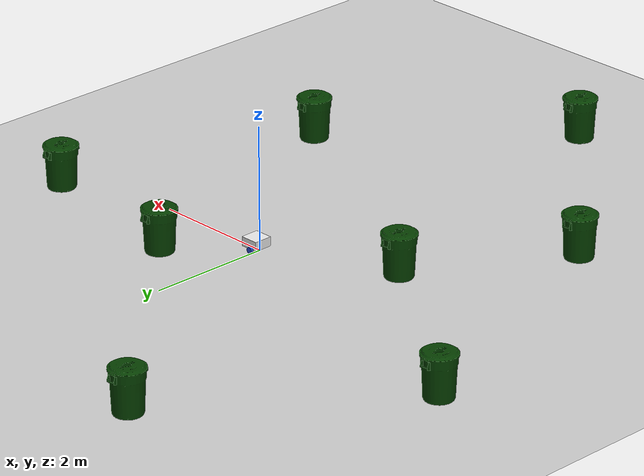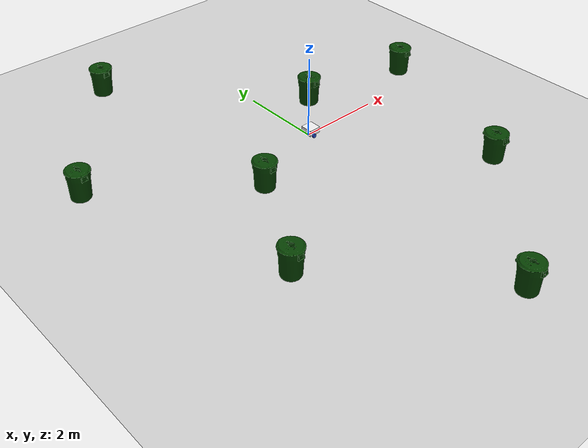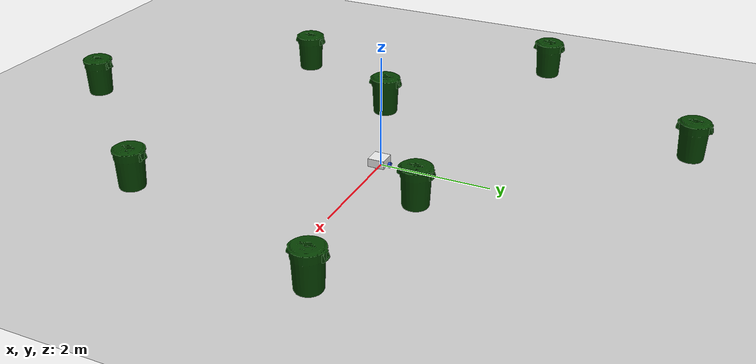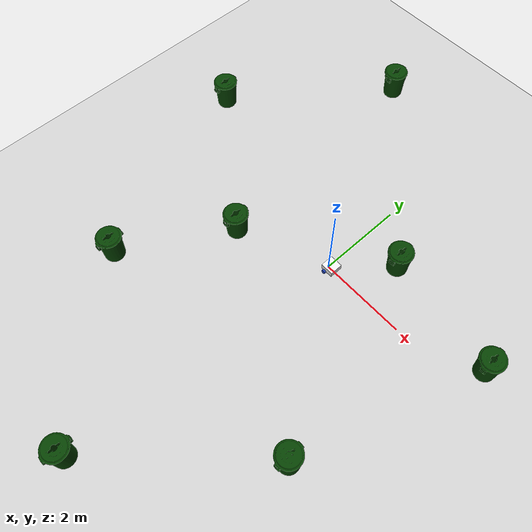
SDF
<sdf version="1.7">
 <world name="default">
  <light name="sun" type="directional">
   <pose>0 0 10 0 -0 0</pose>
   <diffuse>0.8 0.8 0.8 1</diffuse>
   <specular>0.2 0.2 0.2 1</specular>
   <attenuation>
    <range>1000</range>
    <constant>0.9</constant>
    <linear>0.01</linear>
    <quadratic>0.001</quadratic>
   </attenuation>
   <direction>-0.5 0.1 -0.9</direction>
   <spot><inner_angle>0</inner_angle><outer_angle>0</outer_angle><falloff>0</falloff></spot>
  </light>
  <model name="ground_plane">
   <static>1</static>
   <link name="link">
    <collision name="collision">
     <geometry><plane><normal>0 0 1</normal><size>100 100</size></plane></geometry>
     <surface>
      <contact><collide_bitmask>65535</collide_bitmask></contact>
      <friction><ode><mu>100</mu><mu2>50</mu2></ode></friction>
     </surface>
    </collision>
    <visual name="visual">
     <cast_shadows>0</cast_shadows>
     <geometry><plane><normal>0 0 1</normal><size>100 100</size></plane></geometry>
     <material>
      <script><uri>file://media/materials/scripts/gazebo.material</uri><name>Gazebo/Grey</name></script>
     </material>
    </visual>
   </link>
  </model>
  <gravity>0 0 -9.8</gravity>
  <magnetic_field>6e-06 2.3e-05 -4.2e-05</magnetic_field>
  <atmosphere type="adiabatic"/>
  <physics type="ode">
   <max_step_size>0.001</max_step_size>
   <real_time_factor>1</real_time_factor>
   <real_time_update_rate>1000</real_time_update_rate>
  </physics>
  <scene><ambient>0.4 0.4 0.4 1</ambient><background>0.7 0.7 0.7 1</background><shadows>1</shadows></scene>
  <spherical_coordinates>
   <surface_model>EARTH_WGS84</surface_model>
   <latitude_deg>0</latitude_deg>
   <longitude_deg>0</longitude_deg>
   <elevation>0</elevation>
   <heading_deg>0</heading_deg>
  </spherical_coordinates>
  <model name="my_bot">
   <link name="base_link">
    <inertial>
     <pose>0.05 0 0.075 0 -0 0</pose>
     <mass>0.5</mass>
     <inertia>
      <ixx>0.0046875</ixx>
      <ixy>0</ixy>
      <ixz>0</ixz>
      <iyy>0.0046875</iyy>
      <iyz>0</iyz>
      <izz>0.0075</izz>
     </inertia>
    </inertial>
    <collision name="base_link_fixed_joint_lump__chassis_collision">
     <pose>0.05 0 0.075 0 -0 0</pose>
     <geometry><box><size>0.3 0.3 0.15</size></box></geometry>
    </collision>
    <collision name="base_link_fixed_joint_lump__castor_wheel_collision_1">
     <pose>0.14 0 0 0 -0 0</pose>
     <geometry><sphere><radius>0.05</radius></sphere></geometry>
     <surface><friction><ode><mu>0.001</mu><mu2>0.001</mu2></ode></friction></surface>
    </collision>
    <visual name="base_link_fixed_joint_lump__chassis_visual">
     <pose>0.05 0 0.075 0 -0 0</pose>
     <geometry><box><size>0.3 0.3 0.15</size></box></geometry>
     <material>
      <script><name>Gazebo/White</name><uri>file://media/materials/scripts/gazebo.material</uri></script>
     </material>
    </visual>
    <visual name="base_link_fixed_joint_lump__castor_wheel_visual_1">
     <pose>0.14 0 0 0 -0 0</pose>
     <geometry><sphere><radius>0.05</radius></sphere></geometry>
     <material>
      <script><name>Gazebo/Black</name><uri>file://media/materials/scripts/gazebo.material</uri></script>
     </material>
    </visual>
   </link>
   <joint name="left_wheel_joint" type="revolute">
    <pose relative_to="base_link">0 0.175 0 -1.5708 0 0</pose>
    <parent>base_link</parent>
    <child>left_wheel</child>
    <axis>
     <xyz>0 0 1</xyz>
     <limit><lower>-1e+16</lower><upper>1e+16</upper></limit>
     <dynamics><spring_reference>0</spring_reference><spring_stiffness>0</spring_stiffness></dynamics>
    </axis>
   </joint>
   <link name="left_wheel">
    <pose relative_to="left_wheel_joint">0 0 0 0 -0 0</pose>
    <inertial>
     <mass>0.1</mass>
     <inertia>
      <ixx>7.58333e-05</ixx>
      <ixy>0</ixy>
      <ixz>0</ixz>
      <iyy>7.58333e-05</iyy>
      <iyz>0</iyz>
      <izz>0.000125</izz>
     </inertia>
    </inertial>
    <collision name="left_wheel_collision">
     <geometry><cylinder><length>0.04</length><radius>0.05</radius></cylinder></geometry>
    </collision>
    <visual name="left_wheel_visual">
     <geometry><cylinder><length>0.04</length><radius>0.05</radius></cylinder></geometry>
     <material>
      <script><name>Gazebo/Blue</name><uri>file://media/materials/scripts/gazebo.material</uri></script>
     </material>
    </visual>
   </link>
   <joint name="right_wheel_joint" type="revolute">
    <pose relative_to="base_link">0 -0.175 0 1.5708 -0 0</pose>
    <parent>base_link</parent>
    <child>right_wheel</child>
    <axis>
     <xyz>0 0 -1</xyz>
     <limit><lower>-1e+16</lower><upper>1e+16</upper></limit>
     <dynamics><spring_reference>0</spring_reference><spring_stiffness>0</spring_stiffness></dynamics>
    </axis>
   </joint>
   <link name="right_wheel">
    <pose relative_to="right_wheel_joint">0 0 0 0 -0 0</pose>
    <inertial>
     <mass>0.1</mass>
     <inertia>
      <ixx>7.58333e-05</ixx>
      <ixy>0</ixy>
      <ixz>0</ixz>
      <iyy>7.58333e-05</iyy>
      <iyz>0</iyz>
      <izz>0.000125</izz>
     </inertia>
    </inertial>
    <collision name="right_wheel_collision">
     <geometry><cylinder><length>0.04</length><radius>0.05</radius></cylinder></geometry>
    </collision>
    <visual name="right_wheel_visual">
     <geometry><cylinder><length>0.04</length><radius>0.05</radius></cylinder></geometry>
     <material>
      <script><name>Gazebo/Blue</name><uri>file://media/materials/scripts/gazebo.material</uri></script>
     </material>
    </visual>
   </link>
   <static>0</static>
   <plugin name="diff_drive" filename="libgazebo_ros_diff_drive.so">
    <left_joint>left_wheel_joint</left_joint>
    <right_joint>right_wheel_joint</right_joint>
    <wheel_separation>0.35</wheel_separation>
    <wheel_diameter>0.1</wheel_diameter>
    <max_wheel_torque>200</max_wheel_torque>
    <max_wheel_acceleration>10.0</max_wheel_acceleration>
    <odometry_frame>odom</odometry_frame>
    <robot_base_frame>base_link</robot_base_frame>
    <publish_odom>1</publish_odom>
    <publish_odom_tf>1</publish_odom_tf>
    <publish_wheel_tf>1</publish_wheel_tf>
   </plugin>
   <pose>0.022333 6.1e-05 0.05 0 1.1e-05 -0.000253</pose>
  </model>
  <light name="user_point_light_0" type="point">
   <pose>-3.23291 2.02668 1 0 -0 0</pose>
   <diffuse>0.5 0.5 0.5 1</diffuse>
   <specular>0.1 0.1 0.1 1</specular>
   <attenuation>
    <range>20</range>
    <constant>0.5</constant>
    <linear>0.01</linear>
    <quadratic>0.001</quadratic>
   </attenuation>
   <cast_shadows>0</cast_shadows>
   <direction>0 0 -1</direction>
  </light>
  <light name="user_point_light_1" type="point">
   <pose>2.89249 1.9305 1 0 -0 0</pose>
   <diffuse>0.5 0.5 0.5 1</diffuse>
   <specular>0.1 0.1 0.1 1</specular>
   <attenuation>
    <range>20</range>
    <constant>0.5</constant>
    <linear>0.01</linear>
    <quadratic>0.001</quadratic>
   </attenuation>
   <cast_shadows>0</cast_shadows>
   <direction>0 0 -1</direction>
  </light>
  <light name="user_point_light_2" type="point">
   <pose>-4.06855 -3.90344 1 0 -0 0</pose>
   <diffuse>0.5 0.5 0.5 1</diffuse>
   <specular>0.1 0.1 0.1 1</specular>
   <attenuation>
    <range>20</range>
    <constant>0.5</constant>
    <linear>0.01</linear>
    <quadratic>0.001</quadratic>
   </attenuation>
   <cast_shadows>0</cast_shadows>
   <direction>0 0 -1</direction>
  </light>
  <light name="user_point_light_3" type="point">
   <pose>4.07263 -3.97423 1 0 -0 0</pose>
   <diffuse>0.5 0.5 0.5 1</diffuse>
   <specular>0.1 0.1 0.1 1</specular>
   <attenuation>
    <range>20</range>
    <constant>0.5</constant>
    <linear>0.01</linear>
    <quadratic>0.001</quadratic>
   </attenuation>
   <cast_shadows>0</cast_shadows>
   <direction>0 0 -1</direction>
  </light>
  <light name="user_point_light_4" type="point">
   <pose>-6.18281 -0.573226 1 0 -0 0</pose>
   <diffuse>0.5 0.5 0.5 1</diffuse>
   <specular>0.1 0.1 0.1 1</specular>
   <attenuation>
    <range>20</range>
    <constant>0.5</constant>
    <linear>0.01</linear>
    <quadratic>0.001</quadratic>
   </attenuation>
   <cast_shadows>0</cast_shadows>
   <direction>0 0 -1</direction>
  </light>
  <light name="user_point_light_5" type="point">
   <pose>6.22814 -0.608831 1 0 -0 0</pose>
   <diffuse>0.5 0.5 0.5 1</diffuse>
   <specular>0.1 0.1 0.1 1</specular>
   <attenuation>
    <range>20</range>
    <constant>0.5</constant>
    <linear>0.01</linear>
    <quadratic>0.001</quadratic>
   </attenuation>
   <cast_shadows>0</cast_shadows>
   <direction>0 0 -1</direction>
  </light>
  <light name="user_point_light_6" type="point">
   <pose>-0.11209 -6.69354 1 0 -0 0</pose>
   <diffuse>0.5 0.5 0.5 1</diffuse>
   <specular>0.1 0.1 0.1 1</specular>
   <attenuation>
    <range>20</range>
    <constant>0.5</constant>
    <linear>0.01</linear>
    <quadratic>0.001</quadratic>
   </attenuation>
   <cast_shadows>0</cast_shadows>
   <direction>0 0 -1</direction>
  </light>
  <light name="user_point_light_7" type="point">
   <pose>0.004202 4.30702 1 0 -0 0</pose>
   <diffuse>0.5 0.5 0.5 1</diffuse>
   <specular>0.1 0.1 0.1 1</specular>
   <attenuation>
    <range>20</range>
    <constant>0.5</constant>
    <linear>0.01</linear>
    <quadratic>0.001</quadratic>
   </attenuation>
   <cast_shadows>0</cast_shadows>
   <direction>0 0 -1</direction>
  </light>
  <light name="user_point_light_8" type="point">
   <pose>0.026066 0.08159 1 0 -0 0</pose>
   <diffuse>0.5 0.5 0.5 1</diffuse>
   <specular>0.1 0.1 0.1 1</specular>
   <attenuation>
    <range>20</range>
    <constant>0.5</constant>
    <linear>0.01</linear>
    <quadratic>0.001</quadratic>
   </attenuation>
   <cast_shadows>0</cast_shadows>
   <direction>0 0 -1</direction>
  </light>
  <model name="first_2015_trash_can">
   <link name="link">
    <inertial>
     <pose>0 0 0.3683 0 -0 0</pose>
     <mass>4.83076</mass>
     <inertia>
      <ixx>0.281534</ixx>
      <ixy>0</ixy>
      <ixz>0</ixz>
      <iyy>0.281534</iyy>
      <iyz>0</iyz>
      <izz>0.126223</izz>
     </inertia>
    </inertial>
    <visual name="visual">
     <geometry><mesh><uri>model://first_2015_trash_can/meshes/trash_can.dae</uri></mesh></geometry>
    </visual>
    <collision name="collision">
     <geometry><mesh><uri>model://first_2015_trash_can/meshes/trash_can.dae</uri></mesh></geometry>
    </collision>
   </link>
   <pose>-2.0627 -0.864868 -1e-06 1.2e-05 1e-06 -0.000584</pose>
  </model>
  <model name="first_2015_trash_can_0">
   <link name="link">
    <inertial>
     <pose>0 0 0.3683 0 -0 0</pose>
     <mass>4.83076</mass>
     <inertia>
      <ixx>0.281534</ixx>
      <ixy>0</ixy>
      <ixz>0</ixz>
      <iyy>0.281534</iyy>
      <iyz>0</iyz>
      <izz>0.126223</izz>
     </inertia>
    </inertial>
    <visual name="visual">
     <geometry><mesh><uri>model://first_2015_trash_can/meshes/trash_can.dae</uri></mesh></geometry>
    </visual>
    <collision name="collision">
     <geometry><mesh><uri>model://first_2015_trash_can/meshes/trash_can.dae</uri></mesh></geometry>
    </collision>
   </link>
   <pose>2.43943 -3.45339 -2e-06 1.6e-05 5e-06 -0.000465</pose>
  </model>
  <model name="first_2015_trash_can_1">
   <link name="link">
    <inertial>
     <pose>0 0 0.3683 0 -0 0</pose>
     <mass>4.83076</mass>
     <inertia>
      <ixx>0.281534</ixx>
      <ixy>0</ixy>
      <ixz>0</ixz>
      <iyy>0.281534</iyy>
      <iyz>0</iyz>
      <izz>0.126223</izz>
     </inertia>
    </inertial>
    <visual name="visual">
     <geometry><mesh><uri>model://first_2015_trash_can/meshes/trash_can.dae</uri></mesh></geometry>
    </visual>
    <collision name="collision">
     <geometry><mesh><uri>model://first_2015_trash_can/meshes/trash_can.dae</uri></mesh></geometry>
    </collision>
   </link>
   <pose>3.78524 0.6314 -7e-06 -3.3e-05 9e-06 -0.000453</pose>
  </model>
  <model name="first_2015_trash_can_2">
   <link name="link">
    <inertial>
     <pose>0 0 0.3683 0 -0 0</pose>
     <mass>4.83076</mass>
     <inertia>
      <ixx>0.281534</ixx>
      <ixy>0</ixy>
      <ixz>0</ixz>
      <iyy>0.281534</iyy>
      <iyz>0</iyz>
      <izz>0.126223</izz>
     </inertia>
    </inertial>
    <visual name="visual">
     <geometry><mesh><uri>model://first_2015_trash_can/meshes/trash_can.dae</uri></mesh></geometry>
    </visual>
    <collision name="collision">
     <geometry><mesh><uri>model://first_2015_trash_can/meshes/trash_can.dae</uri></mesh></geometry>
    </collision>
   </link>
   <pose>-3.44463 -3.24302 -2e-06 -1.3e-05 1e-05 -0.000361</pose>
  </model>
  <model name="first_2015_trash_can_3">
   <link name="link">
    <inertial>
     <pose>0 0 0.3683 0 -0 0</pose>
     <mass>4.83076</mass>
     <inertia>
      <ixx>0.281534</ixx>
      <ixy>0</ixy>
      <ixz>0</ixz>
      <iyy>0.281534</iyy>
      <iyz>0</iyz>
      <izz>0.126223</izz>
     </inertia>
    </inertial>
    <visual name="visual">
     <geometry><mesh><uri>model://first_2015_trash_can/meshes/trash_can.dae</uri></mesh></geometry>
    </visual>
    <collision name="collision">
     <geometry><mesh><uri>model://first_2015_trash_can/meshes/trash_can.dae</uri></mesh></geometry>
    </collision>
   </link>
   <pose>-2.54838 4.82888 -4e-06 -6e-06 4e-06 -0.000418</pose>
  </model>
  <model name="first_2015_trash_can_4">
   <link name="link">
    <inertial>
     <pose>0 0 0.3683 0 -0 0</pose>
     <mass>4.83076</mass>
     <inertia>
      <ixx>0.281534</ixx>
      <ixy>0</ixy>
      <ixz>0</ixz>
      <iyy>0.281534</iyy>
      <iyz>0</iyz>
      <izz>0.126223</izz>
     </inertia>
    </inertial>
    <visual name="visual">
     <geometry><mesh><uri>model://first_2015_trash_can/meshes/trash_can.dae</uri></mesh></geometry>
    </visual>
    <collision name="collision">
     <geometry><mesh><uri>model://first_2015_trash_can/meshes/trash_can.dae</uri></mesh></geometry>
    </collision>
   </link>
   <pose>1.01526 1.08214 -3e-06 4e-06 9e-06 -0.00035</pose>
  </model>
  <model name="first_2015_trash_can_5">
   <link name="link">
    <inertial>
     <pose>0 0 0.3683 0 -0 0</pose>
     <mass>4.83076</mass>
     <inertia>
      <ixx>0.281534</ixx>
      <ixy>0</ixy>
      <ixz>0</ixz>
      <iyy>0.281534</iyy>
      <iyz>0</iyz>
      <izz>0.126223</izz>
     </inertia>
    </inertial>
    <visual name="visual">
     <geometry><mesh><uri>model://first_2015_trash_can/meshes/trash_can.dae</uri></mesh></geometry>
    </visual>
    <collision name="collision">
     <geometry><mesh><uri>model://first_2015_trash_can/meshes/trash_can.dae</uri></mesh></geometry>
    </collision>
   </link>
   <pose>-5.17939 1.45948 1e-06 -2.6e-05 0 -0.00012</pose>
  </model>
  <model name="first_2015_trash_can_6">
   <link name="link">
    <inertial>
     <pose>0 0 0.3683 0 -0 0</pose>
     <mass>4.83076</mass>
     <inertia>
      <ixx>0.281534</ixx>
      <ixy>0</ixy>
      <ixz>0</ixz>
      <iyy>0.281534</iyy>
      <iyz>0</iyz>
      <izz>0.126223</izz>
     </inertia>
    </inertial>
    <visual name="visual">
     <geometry><mesh><uri>model://first_2015_trash_can/meshes/trash_can.dae</uri></mesh></geometry>
    </visual>
    <collision name="collision">
     <geometry><mesh><uri>model://first_2015_trash_can/meshes/trash_can.dae</uri></mesh></geometry>
    </collision>
   </link>
   <pose>-0.473247 -6.46299 -2e-06 7e-06 9e-06 -6.9e-05</pose>
  </model>
 </world>
</sdf>
